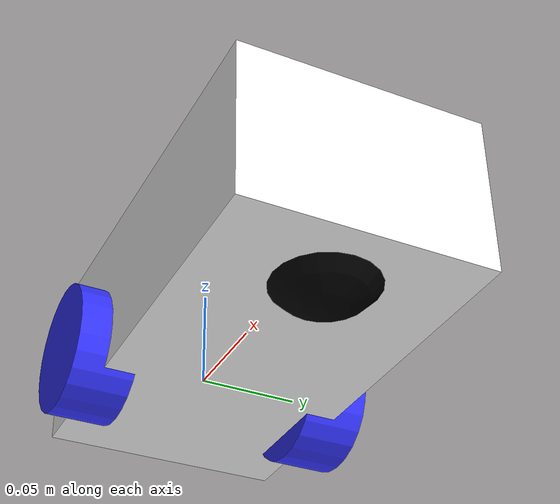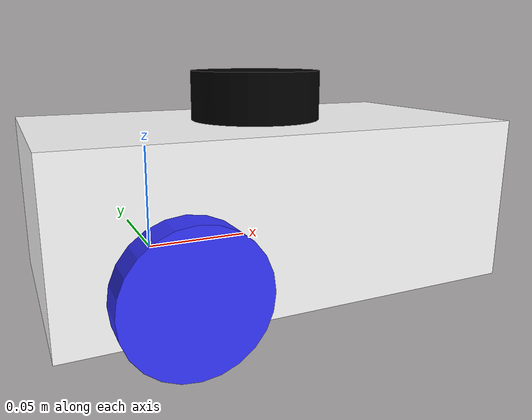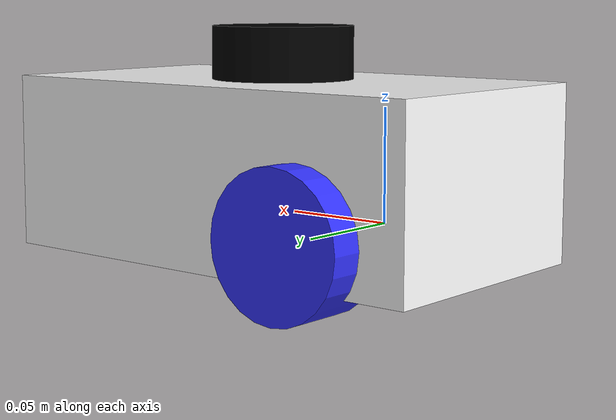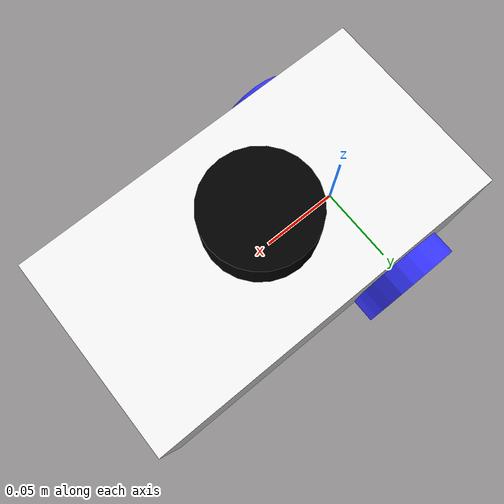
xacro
<?xml version="1.0"?>
<robot xmlns:xacro="http://www.ros.org/wiki/xacro"  name="robot">

<xacro:arg name="use_ros2_control" default="true"/>
<xacro:include filename="robot_core.xacro" />

<xacro:if value="$(arg use_ros2_control)">
    <xacro:include filename="ros2_control.xacro" />
</xacro:if>

<xacro:unless value="$(arg use_ros2_control)">
    <xacro:include filename="gazebo_control.xacro" />
</xacro:unless>

<xacro:include filename="lidar.xacro" />

</robot>

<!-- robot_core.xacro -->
<robot xmlns:xacro="http://www.ros.org/wiki/xacro"  name="robot">

    <xacro:include filename="inertial_macros.xacro"/>

    <material name="white">
        <color rgba="1 1 1 1"/>
    </material>
    <material name="orange">
        <color rgba="1 0.3 0.1 1"/>
    </material>
    <material name="blue">
        <color rgba="0.2 0.2 1 1 "/>
    </material>
    <material name="black">
        <color rgba="0 0 0 1"/>
    </material>
<!-- BASE LINK-->
    <link name="base_link">

    </link>
<!-- CHASSIS LINK-->

    <joint name="chassis_joint" type="fixed">
        <origin xyz="-0.053 0 0.02"/>
        <parent link="base_link"/>
        <child link="chassis"/>
    </joint>
    <link name="chassis">
        <visual>
            <origin xyz="0.11 0 0"/>
            <geometry>
                <box size="0.22 0.12 0.08"/>
            </geometry>
            <material name="white"/>
        </visual>
        <collision>
            <origin xyz="0.11 0 0"/>
            <geometry>
                <box size="0.22 0.12 0.08"/>
            </geometry>
        </collision>
        <xacro:inertial_box mass="0.5" x="0.22" y="0.12" z="0.04">
            <origin xyz="0.11 0 0" rpy="0 0 0 "/>
        </xacro:inertial_box>

    </link>

    <gazebo reference="chassis">
        <mu1>0.2</mu1>
        <mu2>0.2</mu2>
        <material>Gazebo/White</material>
    </gazebo>

 <!-- LEFT BACK WHEEL LINK -->
    <joint name="left_back_wheel_joint" type="continuous">
        <parent link="base_link"/>
        <child link="left_back_wheel"/>
        <origin xyz="0 0.06 0" rpy="-${pi/2} 0 0"/>
        <axis xyz="0 0 1"/>
    </joint>

    <link name="left_back_wheel">
        <visual>
            <geometry>
                <cylinder radius="0.032" length="0.03"/>
            </geometry>
            <material name="blue"/>
        </visual>
        <collision>
            <geometry>
                <sphere  radius="0.032"/>
            </geometry>
        </collision>
        <xacro:inertial_cylinder mass="0.1" length="0.03" radius="0.032">
            <origin xyz="0 0. 0" rpy="0 0 0"/>
        </xacro:inertial_cylinder>

    </link>
    <gazebo reference="left_back_wheel">

        <material>Gazebo/Blue</material>
    </gazebo>

     <!-- RIGHT BACK WHEEL LINK -->
    <joint name="right_back_wheel_joint" type="continuous">
        <parent link="base_link"/>
        <child link="right_back_wheel"/>
        <origin xyz="0 -0.06 0" rpy="${pi/2} 0 0"/>
        <axis xyz="0 0 -1"/>
    </joint>

    <link name="right_back_wheel">
        <visual>
            <geometry>
                <cylinder radius="0.032" length="0.03"/>
            </geometry>
            <material name="blue"/>
        </visual>
        <collision>
            <geometry>
                <sphere  radius="0.032"/>
            </geometry>

        </collision>
        <xacro:inertial_cylinder mass="0.1" length="0.03" radius="0.032">
            <origin xyz="0 0. 0" rpy="0 0 0"/>
        </xacro:inertial_cylinder>

    </link>
    <gazebo reference="right_back_wheel">

        <material>Gazebo/Blue</material>
    </gazebo>

    <!-- cast wheel -->
    <joint name="cast_wheel_joint" type="fixed">
        <parent link="chassis"/>
        <child link="cast_wheel"/>
        <origin xyz="0.18 0 -0.02"/>

    </joint>
    <link name="cast_wheel">
        <visual>
            <geometry>
                <sphere radius="0.032"></sphere>
            </geometry>
            <material name="black"/>
        </visual>
        <collision>
            <geometry>
                <sphere  radius="0.032"/>
            </geometry>
            <material name="black"/>
        </collision>
        <xacro:inertial_sphere mass="0.1" radius="0.032">
            <origin xyz="0 0. 0" rpy="0 0 0"/>
        </xacro:inertial_sphere>
    </link>
    <gazebo reference="cast_wheel">
        <mu1>0.2</mu1>
        <mu2>0.2</mu2>
        <material>Gazebo/Black</material>
    </gazebo>

</robot>

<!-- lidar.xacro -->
<robot xmlns:xacro="http://www.ros.org/wiki/xacro"  >

    <joint name="las_joint" type="fixed">
        <parent link="chassis"/>
        <child link="laser_frame"/>
        <origin xyz="0.11 0 0.049"/>

    </joint>
    <link name="laser_frame">
        <visual>
            <geometry>
                <cylinder radius="0.032" length="0.03"/>
            </geometry>
            <material name="black"/>
        </visual>
        <collision>
            <geometry>
                <cylinder radius="0.032" length="0.03"/>
            </geometry>
            <material name="black"/>
        </collision>
        <xacro:inertial_cylinder mass="0.1" length="0.03" radius="0.032">
            <origin xyz="0 0. 0" rpy="0 0 0"/>
        </xacro:inertial_cylinder>
    </link>

    <gazebo reference="laser_frame">
        <material>Gazebo/Black</material>

        <sensor name="laser" type="ray">
            <pose> 0 0 0 0 0 0 </pose>
            <visualize>true</visualize>
            <update_rate>10</update_rate>
            <ray>
                <scan>
                    <horizontal>
                        <samples>360</samples>
                        <resolution>1</resolution>
                        <min_angle>-3.14</min_angle>
                        <max_angle>3.14</max_angle>
                    </horizontal>
                </scan>
                <range>
                    <min>0.3</min>
                    <max>12</max>
                    <resolution>1</resolution>
                </range>
            </ray>
            <plugin name="laser_controller" filename="libgazebo_ros_ray_sensor.so">
                <ros>
                    <argument>~/out:=scan</argument>
                </ros>
                <output_type>sensor_msgs/LaserScan</output_type>
                <frame_name>laser_frame</frame_name>
            </plugin>
        </sensor>
    </gazebo>

</robot>
